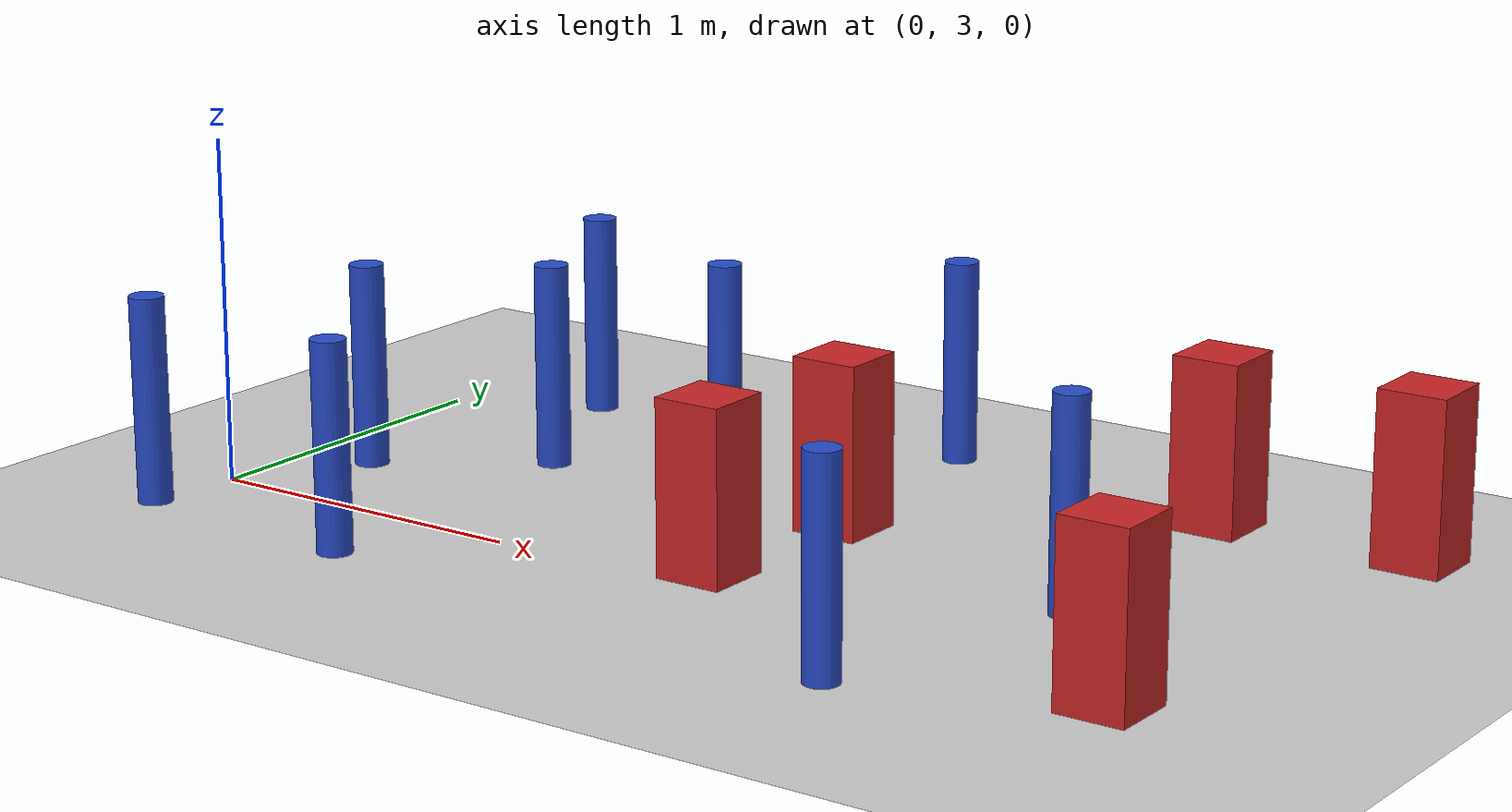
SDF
<sdf version="1.6">
 <world name="default">
  <model name="ground_plane">
   <static>1</static>
   <link name="link">
    <collision name="collision">
     <geometry><plane><normal>0 0 1</normal><size>100 100</size></plane></geometry>
     <surface><friction><ode><mu>100</mu><mu2>50</mu2></ode></friction></surface>
    </collision>
    <visual name="visual">
     <cast_shadows>0</cast_shadows>
     <geometry><plane><normal>0 0 1</normal><size>100 100</size></plane></geometry>
     <material>
      <ambient>1.0 1.0 1.0 1.0</ambient>
      <diffuse>0.8 0.8 0.8 1.0</diffuse>
      <specular>0.01 0.01 0.01 1.000000</specular>
     </material>
    </visual>
   </link>
  </model>
  <model name="pole_obstacle36">
   <static>true</static>
   <pose>0.660144025657 3.65861136991 2.88873142074e-08 -9.90536689636e-09 4.60219948994e-07 -1.20965994958e-07</pose>
   <link name="link">
    <pose>0 0 0.3 0 -0 0</pose>
    <inertial>
     <mass>1</mass>
     <inertia><ixx>0.145833</ixx><ixy>0</ixy><ixz>0</ixz><iyy>0.145833</iyy><iyz>0</iyz><izz>0.125</izz></inertia>
    </inertial>
    <collision name="collision">
     <geometry><cylinder><radius>0.05</radius><length>.6</length></cylinder></geometry>
    </collision>
    <visual name="visual">
     <geometry><cylinder><radius>0.05</radius><length>.6</length></cylinder></geometry>
     <material>
      <script><name>Gazebo/Blue</name><uri>file://media/materials/scripts/gazebo.material</uri></script>
     </material>
    </visual>
   </link>
  </model>
  <model name="pole_obstacle45">
   <static>true</static>
   <pose>1.6062365775 4.37786400295 2.88873142074e-08 -9.90536689852e-09 4.60219948989e-07 -1.2096599496e-07</pose>
   <link name="link">
    <pose>0 0 0.3 0 -0 0</pose>
    <inertial>
     <mass>1</mass>
     <inertia><ixx>0.145833</ixx><ixy>0</ixy><ixz>0</ixz><iyy>0.145833</iyy><iyz>0</iyz><izz>0.125</izz></inertia>
    </inertial>
    <collision name="collision">
     <geometry><cylinder><radius>0.05</radius><length>.6</length></cylinder></geometry>
    </collision>
    <visual name="visual">
     <geometry><cylinder><radius>0.05</radius><length>.6</length></cylinder></geometry>
     <material>
      <script><name>Gazebo/Blue</name><uri>file://media/materials/scripts/gazebo.material</uri></script>
     </material>
    </visual>
   </link>
  </model>
  <model name="pole_obstacle61">
   <static>true</static>
   <pose>2.57173790364 3.38650035701 2.88873142074e-08 -9.90536690232e-09 4.6021994898e-07 -1.20965994968e-07</pose>
   <link name="link">
    <pose>0 0 0.3 0 -0 0</pose>
    <inertial>
     <mass>1</mass>
     <inertia><ixx>0.145833</ixx><ixy>0</ixy><ixz>0</ixz><iyy>0.145833</iyy><iyz>0</iyz><izz>0.125</izz></inertia>
    </inertial>
    <collision name="collision">
     <geometry><cylinder><radius>0.05</radius><length>.6</length></cylinder></geometry>
    </collision>
    <visual name="visual">
     <geometry><cylinder><radius>0.05</radius><length>.6</length></cylinder></geometry>
     <material>
      <script><name>Gazebo/Blue</name><uri>file://media/materials/scripts/gazebo.material</uri></script>
     </material>
    </visual>
   </link>
  </model>
  <model name="pole_obstacle69">
   <static>true</static>
   <pose>-0.0328800915591 2.72272971324 2.88873142074e-08 -9.90536692535e-09 4.60219948925e-07 -1.2096599499e-07</pose>
   <link name="link">
    <pose>0 0 0.3 0 -0 0</pose>
    <inertial>
     <mass>1</mass>
     <inertia><ixx>0.145833</ixx><ixy>0</ixy><ixz>0</ixz><iyy>0.145833</iyy><iyz>0</iyz><izz>0.125</izz></inertia>
    </inertial>
    <collision name="collision">
     <geometry><cylinder><radius>0.05</radius><length>.6</length></cylinder></geometry>
    </collision>
    <visual name="visual">
     <geometry><cylinder><radius>0.05</radius><length>.6</length></cylinder></geometry>
     <material>
      <script><name>Gazebo/Blue</name><uri>file://media/materials/scripts/gazebo.material</uri></script>
     </material>
    </visual>
   </link>
  </model>
  <model name="square_post_obstacle82">
   <static>true</static>
   <pose>3.00604380478 2.8595958126 8.22691968438e-08 7.2212513382e-06 -7.54495500217e-07 2.29674213826e-05</pose>
   <link name="link">
    <pose>0 0 0.25 0 -0 0</pose>
    <inertial>
     <mass>100</mass>
     <inertia>
      <ixx>0.166667</ixx>
      <ixy>0</ixy>
      <ixz>0</ixz>
      <iyy>0.166667</iyy>
      <iyz>0</iyz>
      <izz>0.166667</izz>
     </inertia>
    </inertial>
    <collision name="collision"><geometry><box><size>.2 .2 .5</size></box></geometry></collision>
    <visual name="visual">
     <geometry><box><size>.2 .2 .5</size></box></geometry>
     <material>
      <script><name>Gazebo/Red</name><uri>file://media/materials/scripts/gazebo.material</uri></script>
     </material>
    </visual>
   </link>
  </model>
  <model name="square_post_obstacle104">
   <static>true</static>
   <pose>1.63500351227 3.10330486196 8.22691968438e-08 7.2212513382e-06 -7.54495500217e-07 2.29674213826e-05</pose>
   <link name="link">
    <pose>0 0 0.25 0 -0 0</pose>
    <inertial>
     <mass>100</mass>
     <inertia>
      <ixx>0.166667</ixx>
      <ixy>0</ixy>
      <ixz>0</ixz>
      <iyy>0.166667</iyy>
      <iyz>0</iyz>
      <izz>0.166667</izz>
     </inertia>
    </inertial>
    <collision name="collision"><geometry><box><size>.2 .2 .5</size></box></geometry></collision>
    <visual name="visual">
     <geometry><box><size>.2 .2 .5</size></box></geometry>
     <material>
      <script><name>Gazebo/Red</name><uri>file://media/materials/scripts/gazebo.material</uri></script>
     </material>
    </visual>
   </link>
  </model>
  <model name="square_post_obstacle105">
   <static>true</static>
   <pose>2.53308196435 4.25347665867 8.22691968438e-08 7.2212513382e-06 -7.54495500217e-07 2.29674213826e-05</pose>
   <link name="link">
    <pose>0 0 0.25 0 -0 0</pose>
    <inertial>
     <mass>100</mass>
     <inertia>
      <ixx>0.166667</ixx>
      <ixy>0</ixy>
      <ixz>0</ixz>
      <iyy>0.166667</iyy>
      <iyz>0</iyz>
      <izz>0.166667</izz>
     </inertia>
    </inertial>
    <collision name="collision"><geometry><box><size>.2 .2 .5</size></box></geometry></collision>
    <visual name="visual">
     <geometry><box><size>.2 .2 .5</size></box></geometry>
     <material>
      <script><name>Gazebo/Red</name><uri>file://media/materials/scripts/gazebo.material</uri></script>
     </material>
    </visual>
   </link>
  </model>
  <model name="pole_obstacle145">
   <static>true</static>
   <pose>0.221304937407 3.35469868747 2.88873142074e-08 -9.90536692545e-09 4.60219948925e-07 -1.2096599499e-07</pose>
   <link name="link">
    <pose>0 0 0.3 0 -0 0</pose>
    <inertial>
     <mass>1</mass>
     <inertia><ixx>0.145833</ixx><ixy>0</ixy><ixz>0</ixz><iyy>0.145833</iyy><iyz>0</iyz><izz>0.125</izz></inertia>
    </inertial>
    <collision name="collision">
     <geometry><cylinder><radius>0.05</radius><length>.6</length></cylinder></geometry>
    </collision>
    <visual name="visual">
     <geometry><cylinder><radius>0.05</radius><length>.6</length></cylinder></geometry>
     <material>
      <script><name>Gazebo/Blue</name><uri>file://media/materials/scripts/gazebo.material</uri></script>
     </material>
    </visual>
   </link>
  </model>
  <model name="pole_obstacle150">
   <static>true</static>
   <pose>2.34034649585 2.61218084126 2.88873142074e-08 -9.90536690232e-09 4.6021994898e-07 -1.20965994968e-07</pose>
   <link name="link">
    <pose>0 0 0.3 0 -0 0</pose>
    <inertial>
     <mass>1</mass>
     <inertia><ixx>0.145833</ixx><ixy>0</ixy><ixz>0</ixz><iyy>0.145833</iyy><iyz>0</iyz><izz>0.125</izz></inertia>
    </inertial>
    <collision name="collision">
     <geometry><cylinder><radius>0.05</radius><length>.6</length></cylinder></geometry>
    </collision>
    <visual name="visual">
     <geometry><cylinder><radius>0.05</radius><length>.6</length></cylinder></geometry>
     <material>
      <script><name>Gazebo/Blue</name><uri>file://media/materials/scripts/gazebo.material</uri></script>
     </material>
    </visual>
   </link>
  </model>
  <model name="pole_obstacle153">
   <static>true</static>
   <pose>0.692997042975 2.67274100265 2.88873142074e-08 -9.90536689636e-09 4.60219948994e-07 -1.20965994958e-07</pose>
   <link name="link">
    <pose>0 0 0.3 0 -0 0</pose>
    <inertial>
     <mass>1</mass>
     <inertia><ixx>0.145833</ixx><ixy>0</ixy><ixz>0</ixz><iyy>0.145833</iyy><iyz>0</iyz><izz>0.125</izz></inertia>
    </inertial>
    <collision name="collision">
     <geometry><cylinder><radius>0.05</radius><length>.6</length></cylinder></geometry>
    </collision>
    <visual name="visual">
     <geometry><cylinder><radius>0.05</radius><length>.6</length></cylinder></geometry>
     <material>
      <script><name>Gazebo/Blue</name><uri>file://media/materials/scripts/gazebo.material</uri></script>
     </material>
    </visual>
   </link>
  </model>
  <model name="square_post_obstacle163">
   <static>true</static>
   <pose>1.69636079329 3.64239355805 8.22691968438e-08 7.2212513382e-06 -7.54495500217e-07 2.29674213826e-05</pose>
   <link name="link">
    <pose>0 0 0.25 0 -0 0</pose>
    <inertial>
     <mass>100</mass>
     <inertia>
      <ixx>0.166667</ixx>
      <ixy>0</ixy>
      <ixz>0</ixz>
      <iyy>0.166667</iyy>
      <iyz>0</iyz>
      <izz>0.166667</izz>
     </inertia>
    </inertial>
    <collision name="collision"><geometry><box><size>.2 .2 .5</size></box></geometry></collision>
    <visual name="visual">
     <geometry><box><size>.2 .2 .5</size></box></geometry>
     <material>
      <script><name>Gazebo/Red</name><uri>file://media/materials/scripts/gazebo.material</uri></script>
     </material>
    </visual>
   </link>
  </model>
  <model name="square_post_obstacle168">
   <static>true</static>
   <pose>3.13697117188 4.27471657675 8.22691968438e-08 7.2212513382e-06 -7.54495500217e-07 2.29674213826e-05</pose>
   <link name="link">
    <pose>0 0 0.25 0 -0 0</pose>
    <inertial>
     <mass>100</mass>
     <inertia>
      <ixx>0.166667</ixx>
      <ixy>0</ixy>
      <ixz>0</ixz>
      <iyy>0.166667</iyy>
      <iyz>0</iyz>
      <izz>0.166667</izz>
     </inertia>
    </inertial>
    <collision name="collision"><geometry><box><size>.2 .2 .5</size></box></geometry></collision>
    <visual name="visual">
     <geometry><box><size>.2 .2 .5</size></box></geometry>
     <material>
      <script><name>Gazebo/Red</name><uri>file://media/materials/scripts/gazebo.material</uri></script>
     </material>
    </visual>
   </link>
  </model>
  <model name="pole_obstacle177">
   <static>true</static>
   <pose>1.06390089894 3.95582429751 2.88873142074e-08 -9.90536689669e-09 4.60219948993e-07 -1.2096599496e-07</pose>
   <link name="link">
    <pose>0 0 0.3 0 -0 0</pose>
    <inertial>
     <mass>1</mass>
     <inertia><ixx>0.145833</ixx><ixy>0</ixy><ixz>0</ixz><iyy>0.145833</iyy><iyz>0</iyz><izz>0.125</izz></inertia>
    </inertial>
    <collision name="collision">
     <geometry><cylinder><radius>0.05</radius><length>.6</length></cylinder></geometry>
    </collision>
    <visual name="visual">
     <geometry><cylinder><radius>0.05</radius><length>.6</length></cylinder></geometry>
     <material>
      <script><name>Gazebo/Blue</name><uri>file://media/materials/scripts/gazebo.material</uri></script>
     </material>
    </visual>
   </link>
  </model>
  <model name="pole_obstacle179">
   <static>true</static>
   <pose>0.408883352147 4.20590391549 2.88873142074e-08 -9.90536689683e-09 4.60219948993e-07 -1.20965994957e-07</pose>
   <link name="link">
    <pose>0 0 0.3 0 -0 0</pose>
    <inertial>
     <mass>1</mass>
     <inertia><ixx>0.145833</ixx><ixy>0</ixy><ixz>0</ixz><iyy>0.145833</iyy><iyz>0</iyz><izz>0.125</izz></inertia>
    </inertial>
    <collision name="collision">
     <geometry><cylinder><radius>0.05</radius><length>.6</length></cylinder></geometry>
    </collision>
    <visual name="visual">
     <geometry><cylinder><radius>0.05</radius><length>.6</length></cylinder></geometry>
     <material>
      <script><name>Gazebo/Blue</name><uri>file://media/materials/scripts/gazebo.material</uri></script>
     </material>
    </visual>
   </link>
  </model>
 </world>
</sdf>
